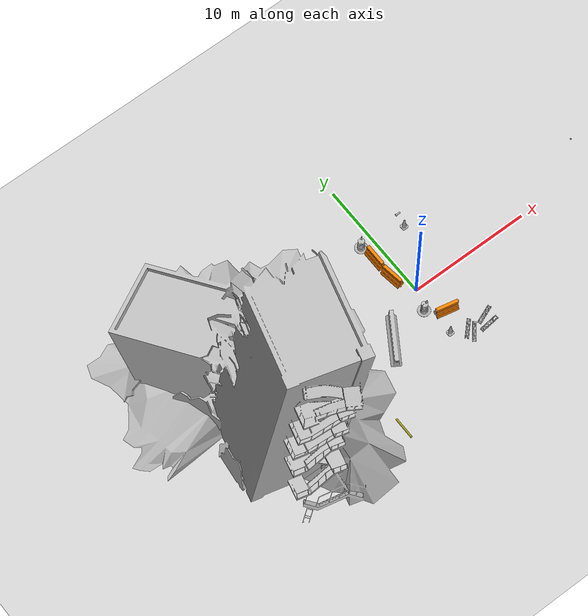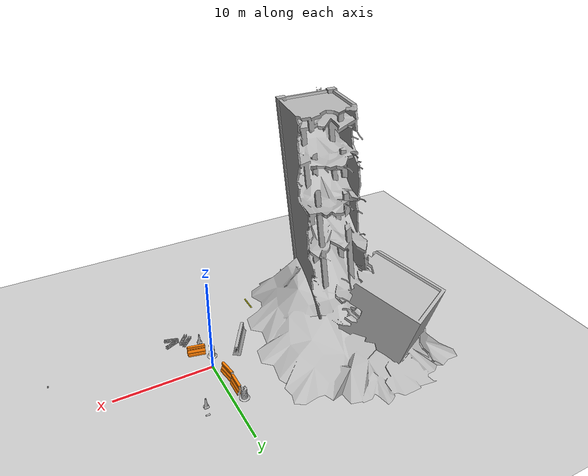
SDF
<sdf version="1.6">
 <world name="default">
  <model name="ground_plane">
   <static>1</static>
   <link name="link">
    <collision name="collision">
     <geometry><plane><normal>0 0 1</normal><size>100 100</size></plane></geometry>
     <surface><friction><ode><mu>100</mu><mu2>50</mu2></ode></friction></surface>
    </collision>
    <visual name="visual">
     <cast_shadows>0</cast_shadows>
     <geometry><plane><normal>0 0 1</normal><size>100 100</size></plane></geometry>
     <material>
      <script><uri>file://media/materials/scripts/gazebo.material</uri><name>Gazebo/Grey</name></script>
     </material>
    </visual>
   </link>
  </model>
  <model name="collapsed_industrial">
   <static>1</static>
   <link name="link">
    <collision name="collision">
     <geometry><mesh><uri>model://collapsed_industrial/meshes/collapsed_industrial.dae</uri></mesh></geometry>
    </collision>
    <visual name="visual">
     <geometry><mesh><uri>model://collapsed_industrial/meshes/collapsed_industrial.dae</uri></mesh></geometry>
    </visual>
   </link>
   <pose>-14.0067 -0.103419 0 0 -0 1.33365</pose>
  </model>
  <model name="Construction Barrel">
   <link name="link">
    <inertial>
     <pose>0 0 0.4 0 -0 0</pose>
     <mass>500</mass>
     <inertia><ixx>51.2096</ixx><iyy>51.2096</iyy><izz>25</izz><ixy>0</ixy><ixz>0</ixz><iyz>0</iyz></inertia>
    </inertial>
    <collision name="collision">
     <geometry><mesh><uri>model://construction_barrel/meshes/construction_barrel.dae</uri></mesh></geometry>
    </collision>
    <visual name="visual">
     <geometry><mesh><uri>model://construction_barrel/meshes/construction_barrel.dae</uri></mesh></geometry>
    </visual>
   </link>
   <pose>-1.05597 5.25063 -2e-06 -8e-06 -0 0.858265</pose>
  </model>
  <model name="drc_practice_yellow_parking_block">
   <static>1</static>
   <link name="link">
    <visual name="visual">
     <geometry><mesh><uri>model://drc_practice_yellow_parking_block/meshes/block.dae</uri></mesh></geometry>
    </visual>
    <collision name="collision">
     <geometry><mesh><uri>model://drc_practice_yellow_parking_block/meshes/block.dae</uri></mesh></geometry>
    </collision>
   </link>
   <pose>-7.46948 -7.91567 0 0 -0 0</pose>
  </model>
  <model name="drc_practice_organge_jersey_barrier">
   <static>1</static>
   <link name="link">
    <visual name="visual">
     <geometry>
      <mesh><uri>model://drc_practice_orange_jersey_barrier/meshes/jersey_barrier.dae</uri></mesh>
     </geometry>
    </visual>
    <collision name="collision">
     <geometry>
      <mesh><uri>model://drc_practice_orange_jersey_barrier/meshes/jersey_barrier.dae</uri></mesh>
     </geometry>
    </collision>
   </link>
   <pose>-0.887228 3.80913 0 0 -0 0</pose>
  </model>
  <model name="drc_practice_organge_jersey_barrier_clone">
   <static>1</static>
   <link name="link">
    <visual name="visual">
     <geometry>
      <mesh><uri>model://drc_practice_orange_jersey_barrier/meshes/jersey_barrier.dae</uri></mesh>
     </geometry>
    </visual>
    <collision name="collision">
     <geometry>
      <mesh><uri>model://drc_practice_orange_jersey_barrier/meshes/jersey_barrier.dae</uri></mesh>
     </geometry>
    </collision>
   </link>
   <pose>-0.831854 1.85615 0.074298 0 -0 0.148039</pose>
  </model>
  <model name="Construction Barrel_0">
   <link name="link">
    <inertial>
     <pose>0 0 0.4 0 -0 0</pose>
     <mass>500</mass>
     <inertia><ixx>51.2096</ixx><iyy>51.2096</iyy><izz>25</izz><ixy>0</ixy><ixz>0</ixz><iyz>0</iyz></inertia>
    </inertial>
    <collision name="collision">
     <geometry><mesh><uri>model://construction_barrel/meshes/construction_barrel.dae</uri></mesh></geometry>
    </collision>
    <visual name="visual">
     <geometry><mesh><uri>model://construction_barrel/meshes/construction_barrel.dae</uri></mesh></geometry>
    </visual>
   </link>
   <pose>-0.544661 -1.56643 -2e-06 0 7e-06 0.000359</pose>
  </model>
  <model name="drc_practice_organge_jersey_barrier_clone_clone_clone">
   <static>1</static>
   <link name="link">
    <visual name="visual">
     <geometry>
      <mesh><uri>model://drc_practice_orange_jersey_barrier/meshes/jersey_barrier.dae</uri></mesh>
     </geometry>
    </visual>
    <collision name="collision">
     <geometry>
      <mesh><uri>model://drc_practice_orange_jersey_barrier/meshes/jersey_barrier.dae</uri></mesh>
     </geometry>
    </collision>
   </link>
   <pose>0.730668 -2.58497 0 0 -0 1.36537</pose>
  </model>
  <model name="standpipe_clone">
   <static>1</static>
   <link name="standpipe">
    <pose>0 0 0.1 0 1.57078 0</pose>
    <collision name="collision_stopper">
     <pose>0 0 0.22 0 -0 0</pose>
     <geometry><cylinder><radius>0.069</radius><length>0.1</length></cylinder></geometry>
     <surface><friction><ode><mu>0.5</mu><mu2>0.5</mu2></ode></friction></surface>
    </collision>
    <collision name="collision">
     <pose>0 0 0.15 0 -0 0</pose>
     <geometry><mesh><uri>model://standpipe/meshes/standpipe.dae</uri></mesh></geometry>
     <surface><friction><ode><mu>0.5</mu><mu2>0.5</mu2></ode></friction></surface>
    </collision>
    <visual name="visual">
     <pose>0 0 0.15 0 -0 0</pose>
     <geometry><mesh><uri>model://standpipe/meshes/standpipe.dae</uri></mesh></geometry>
    </visual>
   </link>
   <pose>2.44659 5.74462 0 0 -0 0</pose>
  </model>
  <model name="jersey_barrier_0">
   <static>1</static>
   <link name="link">
    <visual name="visual">
     <geometry><mesh><uri>model://jersey_barrier/meshes/jersey_barrier.dae</uri></mesh></geometry>
    </visual>
    <collision name="upright">
     <pose>0 0 0.5715 0 -0 0</pose>
     <geometry><box><size>4.06542 0.3063 1.143</size></box></geometry>
    </collision>
    <collision name="base">
     <pose>0 0 0.032258 0 -0 0</pose>
     <geometry><box><size>4.06542 0.8107 0.064516</size></box></geometry>
    </collision>
    <collision name="base2">
     <pose>0 0 0.1 0 -0 0</pose>
     <geometry><box><size>4.06542 0.65 0.1</size></box></geometry>
    </collision>
    <collision name="base3">
     <pose>0 0 0.2 0 -0 0</pose>
     <geometry><box><size>4.06542 0.5 0.1</size></box></geometry>
    </collision>
    <collision name="left-angle">
     <pose>0 -0.224 0.2401 0.9 -0 0</pose>
     <geometry><box><size>4.06542 0.5 0.064516</size></box></geometry>
    </collision>
    <collision name="right-angle">
     <pose>0 0.224 0.2401 -0.9 0 0</pose>
     <geometry><box><size>4.06542 0.5 0.064516</size></box></geometry>
    </collision>
   </link>
   <pose>-3.83767 -2.1374 0 0 -0 1.00568</pose>
  </model>
  <model name="truss_clone_2">
   <link name="link">
    <inertial>
     <mass>20.7307</mass>
     <inertia>
      <ixx>4.7978</ixx>
      <ixy>0</ixy>
      <ixz>0</ixz>
      <iyy>0.4699</iyy>
      <iyz>-0.002</iyz>
      <izz>4.7978</izz>
     </inertia>
    </inertial>
    <collision name="collision">
     <geometry><mesh><uri>model://drc_practice_truss/meshes/truss.dae</uri></mesh></geometry>
     <surface>
      <bounce><restitution_coefficient>0</restitution_coefficient><threshold>100000</threshold></bounce>
      <friction><ode><mu>10</mu><mu2>10</mu2></ode></friction>
     </surface>
    </collision>
    <visual name="visual">
     <geometry><mesh><uri>model://drc_practice_truss/meshes/truss.dae</uri></mesh></geometry>
    </visual>
   </link>
   <pose>2.61468 -4.64544 0.438459 -1.63642 1.56886 0.313332</pose>
  </model>
  <model name="truss_clone_2_clone">
   <link name="link">
    <inertial>
     <mass>20.7307</mass>
     <inertia>
      <ixx>4.7978</ixx>
      <ixy>0</ixy>
      <ixz>0</ixz>
      <iyy>0.4699</iyy>
      <iyz>-0.002</iyz>
      <izz>4.7978</izz>
     </inertia>
    </inertial>
    <collision name="collision">
     <geometry><mesh><uri>model://drc_practice_truss/meshes/truss.dae</uri></mesh></geometry>
     <surface>
      <bounce><restitution_coefficient>0</restitution_coefficient><threshold>100000</threshold></bounce>
      <friction><ode><mu>10</mu><mu2>10</mu2></ode></friction>
     </surface>
    </collision>
    <visual name="visual">
     <geometry><mesh><uri>model://drc_practice_truss/meshes/truss.dae</uri></mesh></geometry>
    </visual>
   </link>
   <pose>2.48285 -5.38263 0.337223 -0.250719 -0.078668 1.63245</pose>
  </model>
  <model name="truss_clone_2_clone_clone">
   <link name="link">
    <inertial>
     <mass>20.7307</mass>
     <inertia>
      <ixx>4.7978</ixx>
      <ixy>0</ixy>
      <ixz>0</ixz>
      <iyy>0.4699</iyy>
      <iyz>-0.002</iyz>
      <izz>4.7978</izz>
     </inertia>
    </inertial>
    <collision name="collision">
     <geometry><mesh><uri>model://drc_practice_truss/meshes/truss.dae</uri></mesh></geometry>
     <surface>
      <bounce><restitution_coefficient>0</restitution_coefficient><threshold>100000</threshold></bounce>
      <friction><ode><mu>10</mu><mu2>10</mu2></ode></friction>
     </surface>
    </collision>
    <visual name="visual">
     <geometry><mesh><uri>model://drc_practice_truss/meshes/truss.dae</uri></mesh></geometry>
    </visual>
   </link>
   <pose>1.04151 -4.681 0.143305 0 -0 2.3613</pose>
  </model>
  <model name="truss_clone_2_clone_clone_0">
   <link name="link">
    <inertial>
     <mass>20.7307</mass>
     <inertia>
      <ixx>4.7978</ixx>
      <ixy>0</ixy>
      <ixz>0</ixz>
      <iyy>0.4699</iyy>
      <iyz>-0.002</iyz>
      <izz>4.7978</izz>
     </inertia>
    </inertial>
    <collision name="collision">
     <geometry><mesh><uri>model://drc_practice_truss/meshes/truss.dae</uri></mesh></geometry>
     <surface>
      <bounce><restitution_coefficient>0</restitution_coefficient><threshold>100000</threshold></bounce>
      <friction><ode><mu>10</mu><mu2>10</mu2></ode></friction>
     </surface>
    </collision>
    <visual name="visual">
     <geometry><mesh><uri>model://drc_practice_truss/meshes/truss.dae</uri></mesh></geometry>
    </visual>
   </link>
   <pose>1.28632 -5.14792 0.147994 -7e-06 1.57079 2.46223</pose>
  </model>
  <model name="Construction Cone_clone_clone_clone">
   <link name="link">
    <collision name="collision">
     <geometry>
      <mesh><scale>10 10 10</scale><uri>model://construction_cone/meshes/construction_cone.dae</uri></mesh>
     </geometry>
    </collision>
    <visual name="visual">
     <geometry>
      <mesh><scale>10 10 10</scale><uri>model://construction_cone/meshes/construction_cone.dae</uri></mesh>
     </geometry>
    </visual>
    <inertial>
     <inertia><ixx>1</ixx><ixy>0</ixy><ixz>0</ixz><iyy>1</iyy><iyz>0</iyz><izz>1</izz></inertia>
     <mass>1</mass>
    </inertial>
   </link>
   <pose>-0.135956 -4.11164 -0 0 -0 0</pose>
  </model>
  <model name="Construction Cone">
   <link name="link">
    <collision name="collision">
     <geometry>
      <mesh><scale>10 10 10</scale><uri>model://construction_cone/meshes/construction_cone.dae</uri></mesh>
     </geometry>
    </collision>
    <visual name="visual">
     <geometry>
      <mesh><scale>10 10 10</scale><uri>model://construction_cone/meshes/construction_cone.dae</uri></mesh>
     </geometry>
    </visual>
    <inertial>
     <inertia><ixx>1</ixx><ixy>0</ixy><ixz>0</ixz><iyy>1</iyy><iyz>0</iyz><izz>1</izz></inertia>
     <mass>1</mass>
    </inertial>
   </link>
   <pose>2.54262 4.66686 -0 0 -0 0</pose>
  </model>
  <model name="distorted_camera" static="1">
   <static>true</static>
   <link name="link" gravity="0.0">
    <pose>15.0 1.0 5.0 3.14 2.7 0</pose>
    <visual name="visual"><geometry><box><size>0.1 0.1 0.1</size></box></geometry></visual>
    <inertial>
     <mass>0.0000000001</mass>
     <inertia><ixx>0.000166667</ixx><iyy>0.000166667</iyy><izz>0.000166667</izz></inertia>
    </inertial>
    <collision name="collision"><geometry><box><size>0.1 0.1 0.1</size></box></geometry></collision>
    <sensor name="camera" type="camera">
     <camera>
      <horizontal_fov>1.047</horizontal_fov>
      <image><width>1920</width><height>1080</height></image>
      <clip><near>0.1</near><far>100</far></clip>
      <distortion>
       <k1>-0.25</k1>
       <k2>0.12</k2>
       <k3>0.0</k3>
       <p1>-0.00028</p1>
       <p2>-0.00005</p2>
       <center>0.5 0.5</center>
      </distortion>
     </camera>
     <always_on>1</always_on>
     <update_rate>30</update_rate>
     <visualize>true</visualize>
     <plugin filename="libgazebo_ros_camera.so" name="camera_en_ros">
      <robotNamespace>/world_view</robotNamespace>
      <cameraName>/world_camera</cameraName>
      <imageTopicName>world_raw_image</imageTopicName>
      <cameraInfoTopicName>world_info_image</cameraInfoTopicName>
      <FrameName>cameraImage</FrameName>
      <Cy>0</Cy>
      <Cx>0</Cx>
      <updateRate>30.0</updateRate>
     </plugin>
    </sensor>
   </link>
  </model>
 </world>
</sdf>
